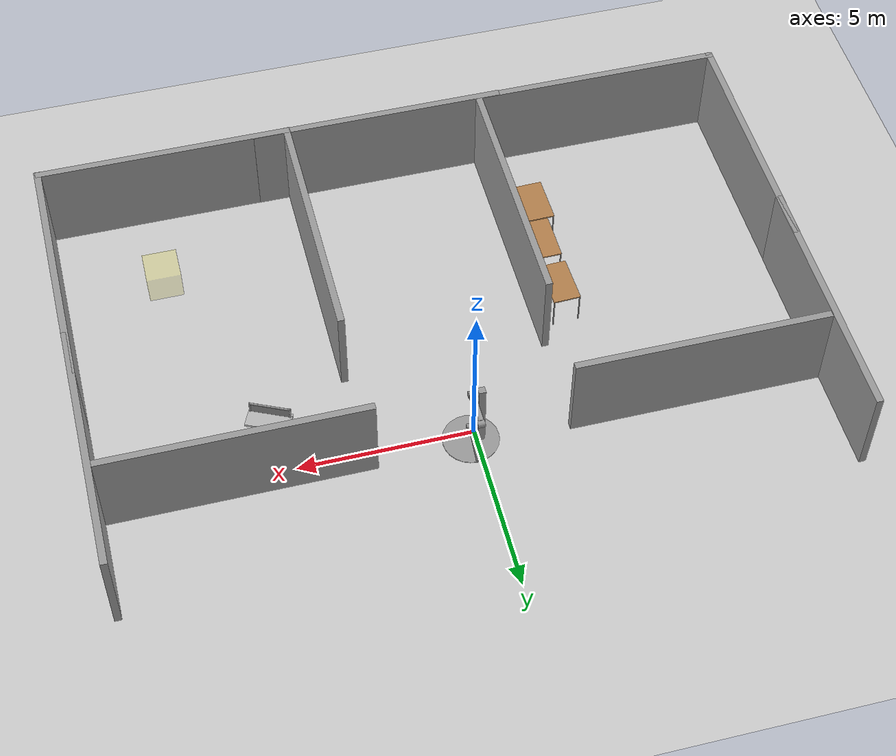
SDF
<sdf version="1.6">
 <world name="default">
  <model name="ground_plane">
   <static>1</static>
   <link name="link">
    <collision name="collision">
     <geometry><plane><normal>0 0 1</normal><size>100 100</size></plane></geometry>
     <surface><friction><ode><mu>100</mu><mu2>50</mu2></ode></friction></surface>
    </collision>
    <visual name="visual">
     <cast_shadows>0</cast_shadows>
     <geometry><plane><normal>0 0 1</normal><size>100 100</size></plane></geometry>
     <material>
      <script><uri>file://media/materials/scripts/gazebo.material</uri><name>Gazebo/Grey</name></script>
     </material>
    </visual>
   </link>
  </model>
  <model name="grey_wall_0">
   <static>1</static>
   <link name="link">
    <pose>0 0 1.4 0 -0 0</pose>
    <collision name="collision"><geometry><box><size>7.5 0.2 2.8</size></box></geometry></collision>
    <visual name="visual">
     <cast_shadows>0</cast_shadows>
     <geometry><box><size>7.5 0.2 2.8</size></box></geometry>
     <material>
      <script>
       <uri>model://grey_wall/materials/scripts</uri>
       <uri>model://grey_wall/materials/textures</uri>
       <name>vrc/grey_wall</name>
      </script>
     </material>
    </visual>
   </link>
   <pose>-6.3811 -9.93831 0 0 -0 0</pose>
  </model>
  <model name="grey_wall_clone_1_clone">
   <static>1</static>
   <link name="link">
    <pose>0 0 1.4 0 -0 0</pose>
    <collision name="collision"><geometry><box><size>7.5 0.2 2.8</size></box></geometry></collision>
    <visual name="visual">
     <cast_shadows>0</cast_shadows>
     <geometry><box><size>7.5 0.2 2.8</size></box></geometry>
     <material>
      <script>
       <uri>model://grey_wall/materials/scripts</uri>
       <uri>model://grey_wall/materials/textures</uri>
       <name>vrc/grey_wall</name>
      </script>
     </material>
    </visual>
   </link>
   <pose>-10.0659 -0.208527 0 0 0 -1.56602</pose>
  </model>
  <model name="grey_wall_clone_1_clone_clone">
   <static>1</static>
   <link name="link">
    <pose>0 0 1.4 0 -0 0</pose>
    <collision name="collision"><geometry><box><size>7.5 0.2 2.8</size></box></geometry></collision>
    <visual name="visual">
     <cast_shadows>0</cast_shadows>
     <geometry><box><size>7.5 0.2 2.8</size></box></geometry>
     <material>
      <script>
       <uri>model://grey_wall/materials/scripts</uri>
       <uri>model://grey_wall/materials/textures</uri>
       <name>vrc/grey_wall</name>
      </script>
     </material>
    </visual>
   </link>
   <pose>-10.0445 -6.29465 0 0 0 -1.56602</pose>
  </model>
  <model name="grey_wall_0_clone">
   <static>1</static>
   <link name="link">
    <pose>0 0 1.4 0 -0 0</pose>
    <collision name="collision"><geometry><box><size>7.5 0.2 2.8</size></box></geometry></collision>
    <visual name="visual">
     <cast_shadows>0</cast_shadows>
     <geometry><box><size>7.5 0.2 2.8</size></box></geometry>
     <material>
      <script>
       <uri>model://grey_wall/materials/scripts</uri>
       <uri>model://grey_wall/materials/textures</uri>
       <name>vrc/grey_wall</name>
      </script>
     </material>
    </visual>
   </link>
   <pose>6.79056 -9.96838 0 0 -0 0</pose>
  </model>
  <model name="grey_wall_clone_1_clone_0_clone">
   <static>1</static>
   <link name="link">
    <pose>0 0 1.4 0 -0 0</pose>
    <collision name="collision"><geometry><box><size>7.5 0.2 2.8</size></box></geometry></collision>
    <visual name="visual">
     <cast_shadows>0</cast_shadows>
     <geometry><box><size>7.5 0.2 2.8</size></box></geometry>
     <material>
      <script>
       <uri>model://grey_wall/materials/scripts</uri>
       <uri>model://grey_wall/materials/textures</uri>
       <name>vrc/grey_wall</name>
      </script>
     </material>
    </visual>
   </link>
   <pose>10.4306 -0.266004 0 0 0 -1.56602</pose>
  </model>
  <model name="grey_wall_clone_1_clone_0_clone_0">
   <static>1</static>
   <link name="link">
    <pose>0 0 1.4 0 -0 0</pose>
    <collision name="collision"><geometry><box><size>7.5 0.2 2.8</size></box></geometry></collision>
    <visual name="visual">
     <cast_shadows>0</cast_shadows>
     <geometry><box><size>7.5 0.2 2.8</size></box></geometry>
     <material>
      <script>
       <uri>model://grey_wall/materials/scripts</uri>
       <uri>model://grey_wall/materials/textures</uri>
       <name>vrc/grey_wall</name>
      </script>
     </material>
    </visual>
   </link>
   <pose>10.4587 -6.32755 0 0 0 -1.56602</pose>
  </model>
  <model name="grey_wall_clone_2">
   <static>1</static>
   <link name="link">
    <pose>0 0 1.4 0 -0 0</pose>
    <collision name="collision"><geometry><box><size>7.5 0.2 2.8</size></box></geometry></collision>
    <visual name="visual">
     <cast_shadows>0</cast_shadows>
     <geometry><box><size>7.5 0.2 2.8</size></box></geometry>
     <material>
      <script>
       <uri>model://grey_wall/materials/scripts</uri>
       <uri>model://grey_wall/materials/textures</uri>
       <name>vrc/grey_wall</name>
      </script>
     </material>
    </visual>
   </link>
   <pose>-6.38709 0.430449 -0.0279 0 -0 0</pose>
  </model>
  <model name="grey_wall_clone_3">
   <static>1</static>
   <link name="link">
    <pose>0 0 1.4 0 -0 0</pose>
    <collision name="collision"><geometry><box><size>7.5 0.2 2.8</size></box></geometry></collision>
    <visual name="visual">
     <cast_shadows>0</cast_shadows>
     <geometry><box><size>7.5 0.2 2.8</size></box></geometry>
     <material>
      <script>
       <uri>model://grey_wall/materials/scripts</uri>
       <uri>model://grey_wall/materials/textures</uri>
       <name>vrc/grey_wall</name>
      </script>
     </material>
    </visual>
   </link>
   <pose>6.57612 0.423406 0 0 -0 0</pose>
  </model>
  <model name="grey_wall_clone_1_clone_0_clone_1_clone_clone">
   <static>1</static>
   <link name="link">
    <pose>0 0 1.4 0 -0 0</pose>
    <collision name="collision"><geometry><box><size>7.5 0.2 2.8</size></box></geometry></collision>
    <visual name="visual">
     <cast_shadows>0</cast_shadows>
     <geometry><box><size>7.5 0.2 2.8</size></box></geometry>
     <material>
      <script>
       <uri>model://grey_wall/materials/scripts</uri>
       <uri>model://grey_wall/materials/textures</uri>
       <name>vrc/grey_wall</name>
      </script>
     </material>
    </visual>
   </link>
   <pose>3.11102 -6.32182 0 0 0 -1.56602</pose>
  </model>
  <model name="grey_wall_clone_1_clone_0_clone_1_clone_clone_0">
   <static>1</static>
   <link name="link">
    <pose>0 0 1.4 0 -0 0</pose>
    <collision name="collision"><geometry><box><size>7.5 0.2 2.8</size></box></geometry></collision>
    <visual name="visual">
     <cast_shadows>0</cast_shadows>
     <geometry><box><size>7.5 0.2 2.8</size></box></geometry>
     <material>
      <script>
       <uri>model://grey_wall/materials/scripts</uri>
       <uri>model://grey_wall/materials/textures</uri>
       <name>vrc/grey_wall</name>
      </script>
     </material>
    </visual>
   </link>
   <pose>-2.7422 -6.17524 0 0 0 -1.56602</pose>
  </model>
  <model name="table">
   <static>0</static>
   <link name="link">
    <collision name="surface">
     <pose>0 0 1 0 -0 0</pose>
     <geometry><box><size>1.5 0.8 0.03</size></box></geometry>
     <surface><friction><ode><mu>0.6</mu><mu2>0.6</mu2></ode></friction></surface>
    </collision>
    <visual name="visual1">
     <pose>0 0 1 0 -0 0</pose>
     <geometry><box><size>1.4 0.8 0.04</size></box></geometry>
     <material>
      <script><uri>file://media/materials/scripts/gazebo.material</uri><name>Gazebo/Wood</name></script>
     </material>
    </visual>
    <collision name="front_left_leg">
     <pose>0.68 0.38 0.5 0 -0 0</pose>
     <geometry><cylinder><radius>0.02</radius><length>1</length></cylinder></geometry>
    </collision>
    <visual name="front_left_leg">
     <pose>0.68 0.38 0.5 0 -0 0</pose>
     <geometry><cylinder><radius>0.02</radius><length>1</length></cylinder></geometry>
     <material>
      <script><uri>file://media/materials/scripts/gazebo.material</uri><name>Gazebo/Grey</name></script>
     </material>
    </visual>
    <collision name="front_right_leg">
     <pose>0.68 -0.38 0.5 0 -0 0</pose>
     <geometry><cylinder><radius>0.02</radius><length>1</length></cylinder></geometry>
    </collision>
    <visual name="front_right_leg">
     <pose>0.68 -0.38 0.5 0 -0 0</pose>
     <geometry><cylinder><radius>0.02</radius><length>1</length></cylinder></geometry>
     <material>
      <script><uri>file://media/materials/scripts/gazebo.material</uri><name>Gazebo/Grey</name></script>
     </material>
    </visual>
    <collision name="back_right_leg">
     <pose>-0.68 -0.38 0.5 0 -0 0</pose>
     <geometry><cylinder><radius>0.02</radius><length>1</length></cylinder></geometry>
    </collision>
    <visual name="back_right_leg">
     <pose>-0.68 -0.38 0.5 0 -0 0</pose>
     <geometry><cylinder><radius>0.02</radius><length>1</length></cylinder></geometry>
     <material>
      <script><uri>file://media/materials/scripts/gazebo.material</uri><name>Gazebo/Grey</name></script>
     </material>
    </visual>
    <collision name="back_left_leg">
     <pose>-0.68 0.38 0.5 0 -0 0</pose>
     <geometry><cylinder><radius>0.02</radius><length>1</length></cylinder></geometry>
    </collision>
    <visual name="back_left_leg">
     <pose>-0.68 0.38 0.5 0 -0 0</pose>
     <geometry><cylinder><radius>0.02</radius><length>1</length></cylinder></geometry>
     <material>
      <script><uri>file://media/materials/scripts/gazebo.material</uri><name>Gazebo/Grey</name></script>
     </material>
    </visual>
    <inertial>
     <inertia><ixx>1</ixx><ixy>0</ixy><ixz>0</ixz><iyy>1</iyy><iyz>0</iyz><izz>1</izz></inertia>
     <mass>1</mass>
    </inertial>
   </link>
   <pose>-9.21004 -0.177966 0.035504 0.011453 0.044483 0.156844</pose>
  </model>
  <model name="table_clone">
   <static>0</static>
   <link name="link">
    <collision name="surface">
     <pose>0 0 1 0 -0 0</pose>
     <geometry><box><size>1.5 0.8 0.03</size></box></geometry>
     <surface><friction><ode><mu>0.6</mu><mu2>0.6</mu2></ode></friction></surface>
    </collision>
    <visual name="visual1">
     <pose>0 0 1 0 -0 0</pose>
     <geometry><box><size>1.4 0.8 0.04</size></box></geometry>
     <material>
      <script><uri>file://media/materials/scripts/gazebo.material</uri><name>Gazebo/Wood</name></script>
     </material>
    </visual>
    <collision name="front_left_leg">
     <pose>0.68 0.38 0.5 0 -0 0</pose>
     <geometry><cylinder><radius>0.02</radius><length>1</length></cylinder></geometry>
    </collision>
    <visual name="front_left_leg">
     <pose>0.68 0.38 0.5 0 -0 0</pose>
     <geometry><cylinder><radius>0.02</radius><length>1</length></cylinder></geometry>
     <material>
      <script><uri>file://media/materials/scripts/gazebo.material</uri><name>Gazebo/Grey</name></script>
     </material>
    </visual>
    <collision name="front_right_leg">
     <pose>0.68 -0.38 0.5 0 -0 0</pose>
     <geometry><cylinder><radius>0.02</radius><length>1</length></cylinder></geometry>
    </collision>
    <visual name="front_right_leg">
     <pose>0.68 -0.38 0.5 0 -0 0</pose>
     <geometry><cylinder><radius>0.02</radius><length>1</length></cylinder></geometry>
     <material>
      <script><uri>file://media/materials/scripts/gazebo.material</uri><name>Gazebo/Grey</name></script>
     </material>
    </visual>
    <collision name="back_right_leg">
     <pose>-0.68 -0.38 0.5 0 -0 0</pose>
     <geometry><cylinder><radius>0.02</radius><length>1</length></cylinder></geometry>
    </collision>
    <visual name="back_right_leg">
     <pose>-0.68 -0.38 0.5 0 -0 0</pose>
     <geometry><cylinder><radius>0.02</radius><length>1</length></cylinder></geometry>
     <material>
      <script><uri>file://media/materials/scripts/gazebo.material</uri><name>Gazebo/Grey</name></script>
     </material>
    </visual>
    <collision name="back_left_leg">
     <pose>-0.68 0.38 0.5 0 -0 0</pose>
     <geometry><cylinder><radius>0.02</radius><length>1</length></cylinder></geometry>
    </collision>
    <visual name="back_left_leg">
     <pose>-0.68 0.38 0.5 0 -0 0</pose>
     <geometry><cylinder><radius>0.02</radius><length>1</length></cylinder></geometry>
     <material>
      <script><uri>file://media/materials/scripts/gazebo.material</uri><name>Gazebo/Grey</name></script>
     </material>
    </visual>
    <inertial>
     <inertia><ixx>1</ixx><ixy>0</ixy><ixz>0</ixz><iyy>1</iyy><iyz>0</iyz><izz>1</izz></inertia>
     <mass>1</mass>
    </inertial>
   </link>
   <pose>-3.56323 -3.82904 -9e-06 0 1e-06 1.60529</pose>
  </model>
  <model name="table_clone_clone">
   <static>0</static>
   <link name="link">
    <collision name="surface">
     <pose>0 0 1 0 -0 0</pose>
     <geometry><box><size>1.5 0.8 0.03</size></box></geometry>
     <surface><friction><ode><mu>0.6</mu><mu2>0.6</mu2></ode></friction></surface>
    </collision>
    <visual name="visual1">
     <pose>0 0 1 0 -0 0</pose>
     <geometry><box><size>1.4 0.8 0.04</size></box></geometry>
     <material>
      <script><uri>file://media/materials/scripts/gazebo.material</uri><name>Gazebo/Wood</name></script>
     </material>
    </visual>
    <collision name="front_left_leg">
     <pose>0.68 0.38 0.5 0 -0 0</pose>
     <geometry><cylinder><radius>0.02</radius><length>1</length></cylinder></geometry>
    </collision>
    <visual name="front_left_leg">
     <pose>0.68 0.38 0.5 0 -0 0</pose>
     <geometry><cylinder><radius>0.02</radius><length>1</length></cylinder></geometry>
     <material>
      <script><uri>file://media/materials/scripts/gazebo.material</uri><name>Gazebo/Grey</name></script>
     </material>
    </visual>
    <collision name="front_right_leg">
     <pose>0.68 -0.38 0.5 0 -0 0</pose>
     <geometry><cylinder><radius>0.02</radius><length>1</length></cylinder></geometry>
    </collision>
    <visual name="front_right_leg">
     <pose>0.68 -0.38 0.5 0 -0 0</pose>
     <geometry><cylinder><radius>0.02</radius><length>1</length></cylinder></geometry>
     <material>
      <script><uri>file://media/materials/scripts/gazebo.material</uri><name>Gazebo/Grey</name></script>
     </material>
    </visual>
    <collision name="back_right_leg">
     <pose>-0.68 -0.38 0.5 0 -0 0</pose>
     <geometry><cylinder><radius>0.02</radius><length>1</length></cylinder></geometry>
    </collision>
    <visual name="back_right_leg">
     <pose>-0.68 -0.38 0.5 0 -0 0</pose>
     <geometry><cylinder><radius>0.02</radius><length>1</length></cylinder></geometry>
     <material>
      <script><uri>file://media/materials/scripts/gazebo.material</uri><name>Gazebo/Grey</name></script>
     </material>
    </visual>
    <collision name="back_left_leg">
     <pose>-0.68 0.38 0.5 0 -0 0</pose>
     <geometry><cylinder><radius>0.02</radius><length>1</length></cylinder></geometry>
    </collision>
    <visual name="back_left_leg">
     <pose>-0.68 0.38 0.5 0 -0 0</pose>
     <geometry><cylinder><radius>0.02</radius><length>1</length></cylinder></geometry>
     <material>
      <script><uri>file://media/materials/scripts/gazebo.material</uri><name>Gazebo/Grey</name></script>
     </material>
    </visual>
    <inertial>
     <inertia><ixx>1</ixx><ixy>0</ixy><ixz>0</ixz><iyy>1</iyy><iyz>0</iyz><izz>1</izz></inertia>
     <mass>1</mass>
    </inertial>
   </link>
   <pose>-3.50674 -5.54427 0.015018 -1e-06 0.021456 1.58732</pose>
  </model>
  <model name="table_clone_clone_0">
   <static>0</static>
   <link name="link">
    <collision name="surface">
     <pose>0 0 1 0 -0 0</pose>
     <geometry><box><size>1.5 0.8 0.03</size></box></geometry>
     <surface><friction><ode><mu>0.6</mu><mu2>0.6</mu2></ode></friction></surface>
    </collision>
    <visual name="visual1">
     <pose>0 0 1 0 -0 0</pose>
     <geometry><box><size>1.4 0.8 0.04</size></box></geometry>
     <material>
      <script><uri>file://media/materials/scripts/gazebo.material</uri><name>Gazebo/Wood</name></script>
     </material>
    </visual>
    <collision name="front_left_leg">
     <pose>0.68 0.38 0.5 0 -0 0</pose>
     <geometry><cylinder><radius>0.02</radius><length>1</length></cylinder></geometry>
    </collision>
    <visual name="front_left_leg">
     <pose>0.68 0.38 0.5 0 -0 0</pose>
     <geometry><cylinder><radius>0.02</radius><length>1</length></cylinder></geometry>
     <material>
      <script><uri>file://media/materials/scripts/gazebo.material</uri><name>Gazebo/Grey</name></script>
     </material>
    </visual>
    <collision name="front_right_leg">
     <pose>0.68 -0.38 0.5 0 -0 0</pose>
     <geometry><cylinder><radius>0.02</radius><length>1</length></cylinder></geometry>
    </collision>
    <visual name="front_right_leg">
     <pose>0.68 -0.38 0.5 0 -0 0</pose>
     <geometry><cylinder><radius>0.02</radius><length>1</length></cylinder></geometry>
     <material>
      <script><uri>file://media/materials/scripts/gazebo.material</uri><name>Gazebo/Grey</name></script>
     </material>
    </visual>
    <collision name="back_right_leg">
     <pose>-0.68 -0.38 0.5 0 -0 0</pose>
     <geometry><cylinder><radius>0.02</radius><length>1</length></cylinder></geometry>
    </collision>
    <visual name="back_right_leg">
     <pose>-0.68 -0.38 0.5 0 -0 0</pose>
     <geometry><cylinder><radius>0.02</radius><length>1</length></cylinder></geometry>
     <material>
      <script><uri>file://media/materials/scripts/gazebo.material</uri><name>Gazebo/Grey</name></script>
     </material>
    </visual>
    <collision name="back_left_leg">
     <pose>-0.68 0.38 0.5 0 -0 0</pose>
     <geometry><cylinder><radius>0.02</radius><length>1</length></cylinder></geometry>
    </collision>
    <visual name="back_left_leg">
     <pose>-0.68 0.38 0.5 0 -0 0</pose>
     <geometry><cylinder><radius>0.02</radius><length>1</length></cylinder></geometry>
     <material>
      <script><uri>file://media/materials/scripts/gazebo.material</uri><name>Gazebo/Grey</name></script>
     </material>
    </visual>
    <inertial>
     <inertia><ixx>1</ixx><ixy>0</ixy><ixz>0</ixz><iyy>1</iyy><iyz>0</iyz><izz>1</izz></inertia>
     <mass>1</mass>
    </inertial>
   </link>
   <pose>-3.70915 -6.98496 -1.3e-05 2e-06 0 1.5879</pose>
  </model>
  <model name="grey_wall_0_clone_0">
   <static>1</static>
   <link name="link">
    <pose>0 0 1.4 0 -0 0</pose>
    <collision name="collision"><geometry><box><size>7.5 0.2 2.8</size></box></geometry></collision>
    <visual name="visual">
     <cast_shadows>0</cast_shadows>
     <geometry><box><size>7.5 0.2 2.8</size></box></geometry>
     <material>
      <script>
       <uri>model://grey_wall/materials/scripts</uri>
       <uri>model://grey_wall/materials/textures</uri>
       <name>vrc/grey_wall</name>
      </script>
     </material>
    </visual>
   </link>
   <pose>0.379741 -9.95906 0 0 -0 0</pose>
  </model>
  <model name="RegionEventBox">
   <static>1</static>
   <pose>7.48394 -7.36536 0 0 -0 0</pose>
   <link name="link">
    <visual name="visual">
     <transparency>0.75</transparency>
     <geometry><box><size>1 1 1.75</size></box></geometry>
     <material>
      <script><uri>file://media/materials/scripts/gazebo.material</uri><name>Gazebo/Yellow</name></script>
     </material>
    </visual>
   </link>
   <plugin name="region_event_box" filename="libRegionEventBoxPlugin.so">
    <event><name>model_in_region_event_box</name><type>inclusion</type><active>true</active></event>
   </plugin>
  </model>
  <model name="frc2016_lowbar">
   <link name="base">
    <inertial>
     <mass>50</mass>
     <inertia>
      <ixx>0.035543</ixx>
      <ixy>0</ixy>
      <ixz>0</ixz>
      <iyy>0.134412</iyy>
      <iyz>0</iyz>
      <izz>0.165376</izz>
     </inertia>
    </inertial>
    <visual name="platform">
     <pose>0 0 0.039065 0 -0 0</pose>
     <geometry><box><size>1.26 0.5996 0.07813</size></box></geometry>
    </visual>
    <collision name="platform">
     <pose>0 0 0.039065 0 -0 0</pose>
     <geometry><box><size>1.27 0.6096 0.07813</size></box></geometry>
    </collision>
    <visual name="right_column">
     <pose>-0.57845 -0.18464 0.26863 0 -0 0</pose>
     <geometry><cylinder><radius>0.0254</radius><length>0.381</length></cylinder></geometry>
    </visual>
    <collision name="right_column">
     <pose>-0.57845 -0.18464 0.26863 0 -0 0</pose>
     <geometry><cylinder><radius>0.0254</radius><length>0.381</length></cylinder></geometry>
    </collision>
    <visual name="left_column">
     <pose>0.57845 -0.18464 0.26863 0 -0 0</pose>
     <geometry><cylinder><radius>0.0254</radius><length>0.381</length></cylinder></geometry>
    </visual>
    <collision name="left_column">
     <pose>0.57845 -0.18464 0.26863 0 -0 0</pose>
     <geometry><cylinder><radius>0.0254</radius><length>0.381</length></cylinder></geometry>
    </collision>
    <visual name="horizontal">
     <pose>0 -0.18464 0.43556 0 1.5707 0</pose>
     <geometry><cylinder><radius>0.0254</radius><length>1.2018</length></cylinder></geometry>
    </visual>
    <collision name="horizontal">
     <pose>0 -0.18464 0.43556 0 1.5707 0</pose>
     <geometry><cylinder><radius>0.0254</radius><length>1.2018</length></cylinder></geometry>
    </collision>
   </link>
   <link name="wall">
    <pose>0 -0.1778 0.24323 0 -0 0</pose>
    <inertial>
     <mass>1</mass>
     <inertia>
      <ixx>0.00774528</ixx>
      <ixy>0</ixy>
      <ixz>0</ixz>
      <iyy>0.116613</iyy>
      <iyz>0</iyz>
      <izz>0.108874</izz>
     </inertia>
    </inertial>
    <visual name="visual">
     <geometry><box><size>1.1176 0.00635 0.3</size></box></geometry>
     <material><ambient>0.46 0.46 0.46 1</ambient><diffuse>0.46 0.46 0.46 1</diffuse></material>
    </visual>
    <collision name="collision"><geometry><box><size>1.143 0.00635 0.3</size></box></geometry></collision>
   </link>
   <joint name="bar_joint" type="revolute">
    <pose>0 0 0.36378 0 -0 0</pose>
    <parent>base</parent>
    <child>wall</child>
    <axis>
     <xyz>1 0 0</xyz>
     <limit><lower>-1.5707</lower><upper>1.5707</upper></limit>
     <use_parent_model_frame>0</use_parent_model_frame>
     <dynamics><spring_reference>0</spring_reference><spring_stiffness>0</spring_stiffness></dynamics>
    </axis>
   </joint>
   <pose>5.43932 -1.76531 -4e-06 6e-06 1e-05 -0.437324</pose>
  </model>
  <model name="double_pendulum_with_base">
   <link name="base">
    <inertial>
     <mass>100</mass>
     <inertia><ixx>1</ixx><ixy>0</ixy><ixz>0</ixz><iyy>1</iyy><iyz>0</iyz><izz>1</izz></inertia>
    </inertial>
    <visual name="vis_plate_on_ground">
     <pose>0 0 0.01 0 -0 0</pose>
     <geometry><cylinder><radius>0.8</radius><length>0.02</length></cylinder></geometry>
     <material>
      <script><uri>file://media/materials/scripts/gazebo.material</uri><name>Gazebo/Grey</name></script>
     </material>
    </visual>
    <visual name="vis_pole">
     <pose>-0.275 0 1.1 0 -0 0</pose>
     <geometry><box><size>0.2 0.2 2.2</size></box></geometry>
     <material>
      <script><uri>file://media/materials/scripts/gazebo.material</uri><name>Gazebo/Grey</name></script>
     </material>
    </visual>
    <collision name="col_plate_on_ground">
     <pose>0 0 0.01 0 -0 0</pose>
     <geometry><cylinder><radius>0.8</radius><length>0.02</length></cylinder></geometry>
    </collision>
    <collision name="col_pole">
     <pose>-0.275 0 1.1 0 -0 0</pose>
     <geometry><box><size>0.2 0.2 2.2</size></box></geometry>
    </collision>
   </link>
   <link name="upper_link">
    <pose>0 0 2.1 -1.5708 0 0</pose>
    <inertial>
     <pose>0 0 0.5 0 -0 0</pose>
     <inertia><ixx>1</ixx><ixy>0</ixy><ixz>0</ixz><iyy>1</iyy><iyz>0</iyz><izz>1</izz></inertia>
     <mass>1</mass>
    </inertial>
    <visual name="vis_upper_joint">
     <pose>-0.05 0 0 3.14159 1.57079 3.14159</pose>
     <geometry><cylinder><radius>0.1</radius><length>0.3</length></cylinder></geometry>
     <material>
      <script><uri>file://media/materials/scripts/gazebo.material</uri><name>Gazebo/Grey</name></script>
     </material>
    </visual>
    <visual name="vis_lower_joint">
     <pose>0 0 1 3.14159 1.57079 3.14159</pose>
     <geometry><cylinder><radius>0.1</radius><length>0.2</length></cylinder></geometry>
     <material>
      <script><uri>file://media/materials/scripts/gazebo.material</uri><name>Gazebo/Grey</name></script>
     </material>
    </visual>
    <visual name="vis_cylinder">
     <pose>0 0 0.5 0 -0 0</pose>
     <geometry><cylinder><radius>0.1</radius><length>0.9</length></cylinder></geometry>
     <material>
      <script><uri>file://media/materials/scripts/gazebo.material</uri><name>Gazebo/Grey</name></script>
     </material>
    </visual>
    <collision name="col_upper_joint">
     <pose>-0.05 0 0 3.14159 1.57079 3.14159</pose>
     <geometry><cylinder><radius>0.1</radius><length>0.3</length></cylinder></geometry>
    </collision>
    <collision name="col_lower_joint">
     <pose>0 0 1 3.14159 1.57079 3.14159</pose>
     <geometry><cylinder><radius>0.1</radius><length>0.2</length></cylinder></geometry>
    </collision>
    <collision name="col_cylinder">
     <pose>0 0 0.5 0 -0 0</pose>
     <geometry><cylinder><radius>0.1</radius><length>0.9</length></cylinder></geometry>
    </collision>
   </link>
   <link name="lower_link">
    <pose>0.25 1 2.1 -2 0 0</pose>
    <inertial>
     <pose>0 0 0.5 0 -0 0</pose>
     <inertia><ixx>1</ixx><ixy>0</ixy><ixz>0</ixz><iyy>1</iyy><iyz>0</iyz><izz>1</izz></inertia>
     <mass>1</mass>
    </inertial>
    <visual name="vis_lower_joint">
     <pose>0 0 0 3.14159 1.57079 3.14159</pose>
     <geometry><cylinder><radius>0.08</radius><length>0.3</length></cylinder></geometry>
     <material>
      <script><uri>file://media/materials/scripts/gazebo.material</uri><name>Gazebo/Grey</name></script>
     </material>
    </visual>
    <visual name="vis_cylinder">
     <pose>0 0 0.5 0 -0 0</pose>
     <geometry><cylinder><radius>0.1</radius><length>0.9</length></cylinder></geometry>
     <material>
      <script><uri>file://media/materials/scripts/gazebo.material</uri><name>Gazebo/Grey</name></script>
     </material>
    </visual>
    <collision name="col_lower_joint">
     <pose>0 0 0 3.14159 1.57079 3.14159</pose>
     <geometry><cylinder><radius>0.08</radius><length>0.3</length></cylinder></geometry>
    </collision>
    <collision name="col_cylinder">
     <pose>0 0 0.5 0 -0 0</pose>
     <geometry><cylinder><radius>0.1</radius><length>0.9</length></cylinder></geometry>
    </collision>
   </link>
   <joint name="upper_joint" type="revolute">
    <parent>base</parent>
    <child>upper_link</child>
    <axis>
     <xyz>1 0 0</xyz>
     <use_parent_model_frame>1</use_parent_model_frame>
     <limit><lower>-1e+16</lower><upper>1e+16</upper></limit>
     <dynamics><spring_reference>0</spring_reference><spring_stiffness>0</spring_stiffness></dynamics>
    </axis>
   </joint>
   <joint name="lower_joint" type="revolute">
    <parent>upper_link</parent>
    <child>lower_link</child>
    <axis>
     <xyz>1 0 0</xyz>
     <use_parent_model_frame>1</use_parent_model_frame>
     <limit><lower>-1e+16</lower><upper>1e+16</upper></limit>
     <dynamics><spring_reference>0</spring_reference><spring_stiffness>0</spring_stiffness></dynamics>
    </axis>
   </joint>
   <pose>0.138383 0.195916 0 0 0 -0.008201</pose>
  </model>
  <model name="bookshelf">
   <static>1</static>
   <link name="link">
    <inertial><mass>1</mass></inertial>
    <collision name="back">
     <pose>0 0.005 0.6 0 -0 0</pose>
     <geometry><box><size>0.9 0.01 1.2</size></box></geometry>
    </collision>
    <visual name="visual1">
     <pose>0 0.005 0.6 0 -0 0</pose>
     <geometry><box><size>0.9 0.01 1.2</size></box></geometry>
     <material>
      <script><uri>file://media/materials/scripts/gazebo.material</uri><name>Gazebo/Wood</name></script>
     </material>
    </visual>
    <collision name="left_side">
     <pose>0.45 -0.195 0.6 0 -0 0</pose>
     <geometry><box><size>0.02 0.4 1.2</size></box></geometry>
    </collision>
    <visual name="visual2">
     <pose>0.45 -0.195 0.6 0 -0 0</pose>
     <geometry><box><size>0.02 0.4 1.2</size></box></geometry>
     <material>
      <script><uri>file://media/materials/scripts/gazebo.material</uri><name>Gazebo/Wood</name></script>
     </material>
    </visual>
    <collision name="right_side">
     <pose>-0.45 -0.195 0.6 0 -0 0</pose>
     <geometry><box><size>0.02 0.4 1.2</size></box></geometry>
    </collision>
    <visual name="visual3">
     <pose>-0.45 -0.195 0.6 0 -0 0</pose>
     <geometry><box><size>0.02 0.4 1.2</size></box></geometry>
     <material>
      <script><uri>file://media/materials/scripts/gazebo.material</uri><name>Gazebo/Wood</name></script>
     </material>
    </visual>
    <collision name="bottom">
     <pose>0 -0.195 0.03 0 -0 0</pose>
     <geometry><box><size>0.88 0.4 0.06</size></box></geometry>
    </collision>
    <visual name="visual4">
     <pose>0 -0.195 0.03 0 -0 0</pose>
     <geometry><box><size>0.88 0.4 0.06</size></box></geometry>
     <material>
      <script><uri>file://media/materials/scripts/gazebo.material</uri><name>Gazebo/Wood</name></script>
     </material>
    </visual>
    <collision name="top">
     <pose>0 -0.195 1.19 0 -0 0</pose>
     <geometry><box><size>0.88 0.4 0.02</size></box></geometry>
    </collision>
    <visual name="visual5">
     <pose>0 -0.195 1.19 0 -0 0</pose>
     <geometry><box><size>0.88 0.4 0.02</size></box></geometry>
     <material>
      <script><uri>file://media/materials/scripts/gazebo.material</uri><name>Gazebo/Wood</name></script>
     </material>
    </visual>
    <collision name="low_shelf">
     <pose>0 -0.195 0.43 0 -0 0</pose>
     <geometry><box><size>0.88 0.4 0.02</size></box></geometry>
    </collision>
    <visual name="visual6">
     <pose>0 -0.195 0.43 0 -0 0</pose>
     <geometry><box><size>0.88 0.4 0.02</size></box></geometry>
     <material>
      <script><uri>file://media/materials/scripts/gazebo.material</uri><name>Gazebo/Wood</name></script>
     </material>
    </visual>
    <collision name="high_shelf">
     <pose>0 -0.195 0.8 0 -0 0</pose>
     <geometry><box><size>0.88 0.4 0.02</size></box></geometry>
    </collision>
    <visual name="visual7">
     <pose>0 -0.195 0.8 0 -0 0</pose>
     <geometry><box><size>0.88 0.4 0.02</size></box></geometry>
     <material>
      <script><uri>file://media/materials/scripts/gazebo.material</uri><name>Gazebo/Wood</name></script>
     </material>
    </visual>
   </link>
   <pose>-5.04593 0.107883 0 0 -0 0</pose>
  </model>
  <model name="bookshelf_0">
   <static>1</static>
   <link name="link">
    <inertial><mass>1</mass></inertial>
    <collision name="back">
     <pose>0 0.005 0.6 0 -0 0</pose>
     <geometry><box><size>0.9 0.01 1.2</size></box></geometry>
    </collision>
    <visual name="visual1">
     <pose>0 0.005 0.6 0 -0 0</pose>
     <geometry><box><size>0.9 0.01 1.2</size></box></geometry>
     <material>
      <script><uri>file://media/materials/scripts/gazebo.material</uri><name>Gazebo/Wood</name></script>
     </material>
    </visual>
    <collision name="left_side">
     <pose>0.45 -0.195 0.6 0 -0 0</pose>
     <geometry><box><size>0.02 0.4 1.2</size></box></geometry>
    </collision>
    <visual name="visual2">
     <pose>0.45 -0.195 0.6 0 -0 0</pose>
     <geometry><box><size>0.02 0.4 1.2</size></box></geometry>
     <material>
      <script><uri>file://media/materials/scripts/gazebo.material</uri><name>Gazebo/Wood</name></script>
     </material>
    </visual>
    <collision name="right_side">
     <pose>-0.45 -0.195 0.6 0 -0 0</pose>
     <geometry><box><size>0.02 0.4 1.2</size></box></geometry>
    </collision>
    <visual name="visual3">
     <pose>-0.45 -0.195 0.6 0 -0 0</pose>
     <geometry><box><size>0.02 0.4 1.2</size></box></geometry>
     <material>
      <script><uri>file://media/materials/scripts/gazebo.material</uri><name>Gazebo/Wood</name></script>
     </material>
    </visual>
    <collision name="bottom">
     <pose>0 -0.195 0.03 0 -0 0</pose>
     <geometry><box><size>0.88 0.4 0.06</size></box></geometry>
    </collision>
    <visual name="visual4">
     <pose>0 -0.195 0.03 0 -0 0</pose>
     <geometry><box><size>0.88 0.4 0.06</size></box></geometry>
     <material>
      <script><uri>file://media/materials/scripts/gazebo.material</uri><name>Gazebo/Wood</name></script>
     </material>
    </visual>
    <collision name="top">
     <pose>0 -0.195 1.19 0 -0 0</pose>
     <geometry><box><size>0.88 0.4 0.02</size></box></geometry>
    </collision>
    <visual name="visual5">
     <pose>0 -0.195 1.19 0 -0 0</pose>
     <geometry><box><size>0.88 0.4 0.02</size></box></geometry>
     <material>
      <script><uri>file://media/materials/scripts/gazebo.material</uri><name>Gazebo/Wood</name></script>
     </material>
    </visual>
    <collision name="low_shelf">
     <pose>0 -0.195 0.43 0 -0 0</pose>
     <geometry><box><size>0.88 0.4 0.02</size></box></geometry>
    </collision>
    <visual name="visual6">
     <pose>0 -0.195 0.43 0 -0 0</pose>
     <geometry><box><size>0.88 0.4 0.02</size></box></geometry>
     <material>
      <script><uri>file://media/materials/scripts/gazebo.material</uri><name>Gazebo/Wood</name></script>
     </material>
    </visual>
    <collision name="high_shelf">
     <pose>0 -0.195 0.8 0 -0 0</pose>
     <geometry><box><size>0.88 0.4 0.02</size></box></geometry>
    </collision>
    <visual name="visual7">
     <pose>0 -0.195 0.8 0 -0 0</pose>
     <geometry><box><size>0.88 0.4 0.02</size></box></geometry>
     <material>
      <script><uri>file://media/materials/scripts/gazebo.material</uri><name>Gazebo/Wood</name></script>
     </material>
    </visual>
   </link>
   <pose>9.04578 -0.117701 0 0 -0 0</pose>
  </model>
 </world>
</sdf>
